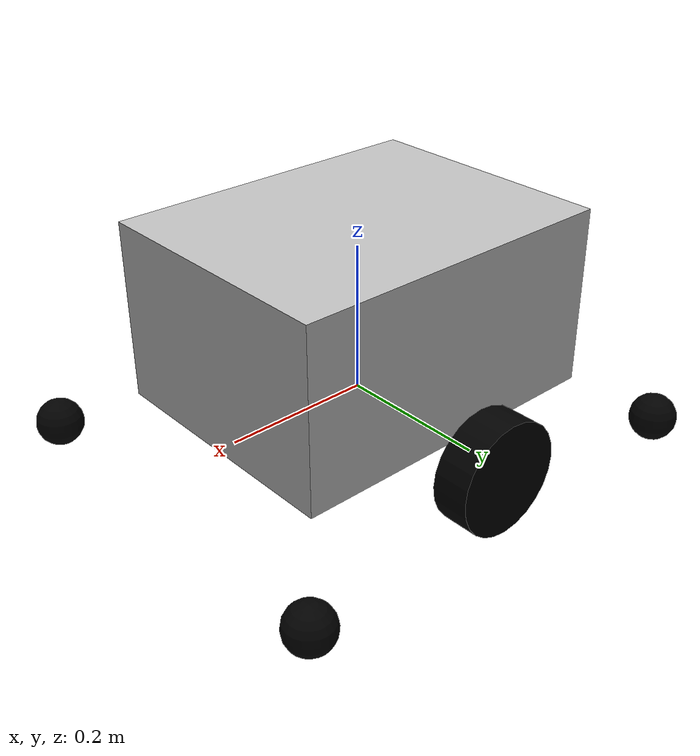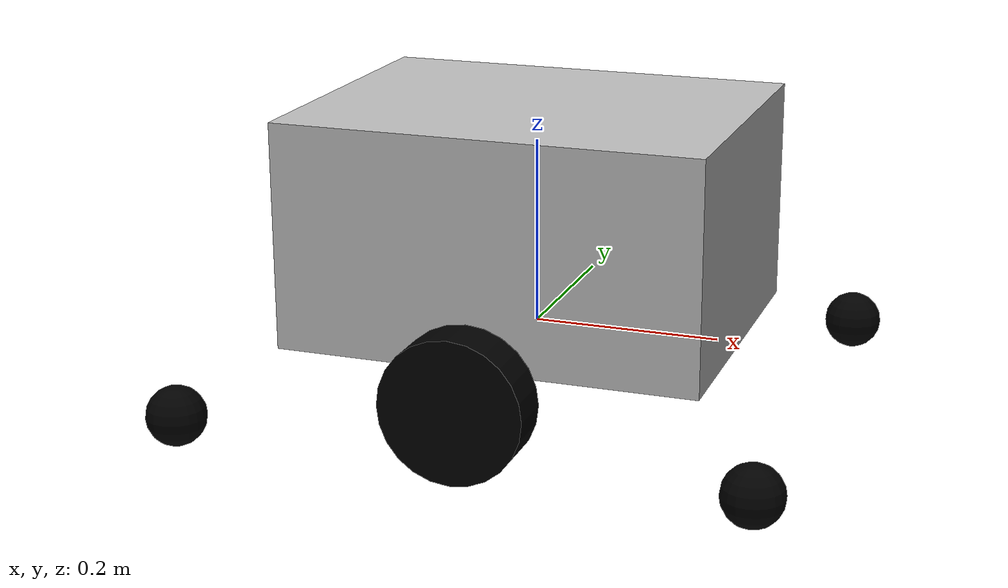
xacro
<?xml version="1.0"?>
<robot name="agv_with_casters" xmlns:xacro="http://www.ros.org/wiki/xacro">

  <xacro:property name="pi" value="3.1415926535897931"/>

  <!-- ================= inertia macro ================= -->
  <xacro:macro name="inertial_cylinder" params="mass length radius">
    <inertial>
      <mass value="${mass}" />
      <inertia
        ixx="${(1/12) * mass * (3*radius*radius + length*length)}"
        ixy="0.0" ixz="0.0"
        iyy="${(1/12) * mass * (3*radius*radius + length*length)}"
        iyz="0.0"
        izz="${(1/2) * mass * (radius*radius)}" />
    </inertial>
  </xacro:macro>

  <!-- ================= materials ================= -->
  <material name="black"><color rgba="0 0 0 1"/></material>
  <material name="silver"><color rgba="0.75 0.75 0.75 1"/></material>

  <!-- ================= base_link (NO PHYSICS) ================= -->
  <link name="base_link"/>

  <!-- ================= chassis (PHYSICS BODY) ================= -->
  <joint name="base_to_chassis" type="fixed">
    <parent link="base_link"/>
    <child link="chassis_link"/>
  </joint>

  <link name="chassis_link">
    <visual>
      <geometry><box size="0.45 0.35 0.24"/></geometry>
      <origin xyz="0 0 0.12"/>
      <material name="silver"/>
    </visual>
    <collision>
      <geometry><box size="0.900 0.590 0.24"/></geometry>
      <origin xyz="0 0 0.12"/>
    </collision>
    <inertial>
      <mass value="20.0"/>
      <origin xyz="0 0 0.12"/>
      <inertia
        ixx="1.2"
        ixy="0.0" ixz="0.0"
        iyy="2.0"
        iyz="0.0"
        izz="2.5"/>
    </inertial>
  </link>

  <!-- ================= caster macro ================= -->
  <xacro:macro name="caster" params="name x y">
    <link name="${name}_link">
      <visual>
        <geometry><sphere radius="0.0315"/></geometry>
        <material name="black"/>
      </visual>
      <collision>
        <geometry><sphere radius="0.0315"/></geometry>
      </collision>
      <inertial>
        <mass value="0.3"/>
        <inertia
          ixx="0.0001"
          ixy="0.0" ixz="0.0"
          iyy="0.0001"
          iyz="0.0"
          izz="0.0001"/>
      </inertial>
    </link>

    <joint name="${name}_joint" type="fixed">
      <parent link="chassis_link"/>
      <child link="${name}_link"/>
      <origin xyz="${x} ${y} -0.052"/>
    </joint>

    <gazebo reference="${name}_link">
      <mu1>0.2</mu1>
      <mu2>0.2</mu2>
    </gazebo>
  </xacro:macro>

  <!-- ================= casters ================= -->
  <xacro:caster name="caster_fr" x="0.2993"  y="-0.260"/>
  <xacro:caster name="caster_fl" x="0.2993"  y="0.260"/>
  <xacro:caster name="caster_rr" x="-0.2993" y="-0.260"/>
  <xacro:caster name="caster_rl" x="-0.2993" y="0.260"/>

  <!-- ================= right wheel ================= -->
  <link name="right_wheel">
    <visual>
      <geometry><cylinder radius="0.075" length="0.05"/></geometry>
      <material name="black"/>
    </visual>
    <collision>
      <geometry><cylinder radius="0.075" length="0.05"/></geometry>
    </collision>
    <xacro:inertial_cylinder mass="0.5" length="0.05" radius="0.075"/>
  </link>
    <gazebo reference="right_wheel">
        <material>Gazebo/Black</material>
    </gazebo>
  <joint name="right_wheel_joint" type="continuous">
    <parent link="chassis_link"/>
    <child link="right_wheel"/>
    <origin xyz="0 -0.2397 -0.00973" rpy="${pi/2} 0 0"/>
    <axis xyz="0 0 -1"/>
  </joint>

  <!-- ================= left wheel ================= -->
  <link name="left_wheel">
    <visual>
      <geometry><cylinder radius="0.075" length="0.05"/></geometry>
      <material name="black"/>
    </visual>
    <collision>
      <geometry><cylinder radius="0.075" length="0.05"/></geometry>
    </collision>
    <xacro:inertial_cylinder mass="0.5" length="0.05" radius="0.075"/>
  </link>
    <gazebo reference="left_wheel">
        <material>Gazebo/Black</material>
    </gazebo>

  <joint name="left_wheel_joint" type="continuous">
    <parent link="chassis_link"/>
    <child link="left_wheel"/>
    <origin xyz="0 0.2397 -0.00973" rpy="-${pi/2} 0 0"/>
    <axis xyz="0 0 1"/>
  </joint>

</robot>
